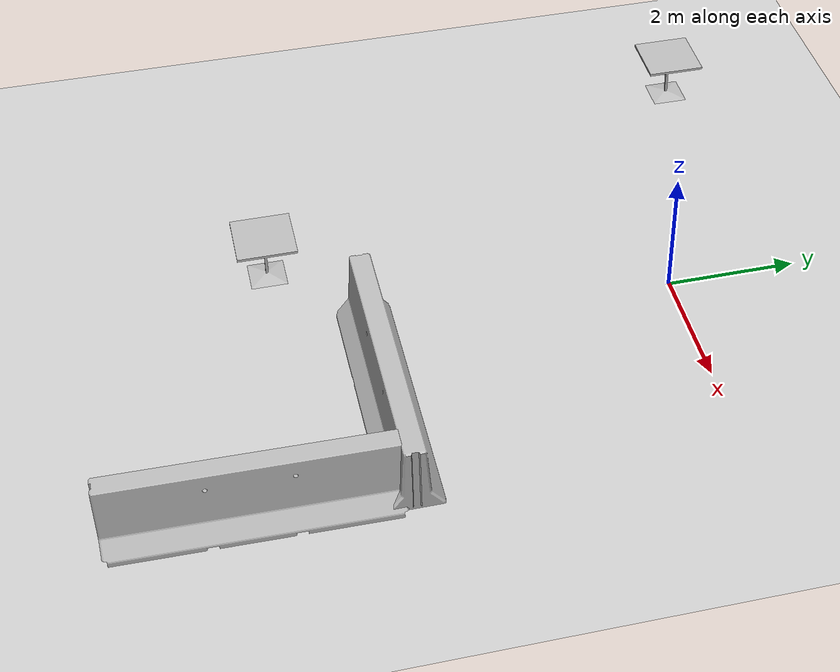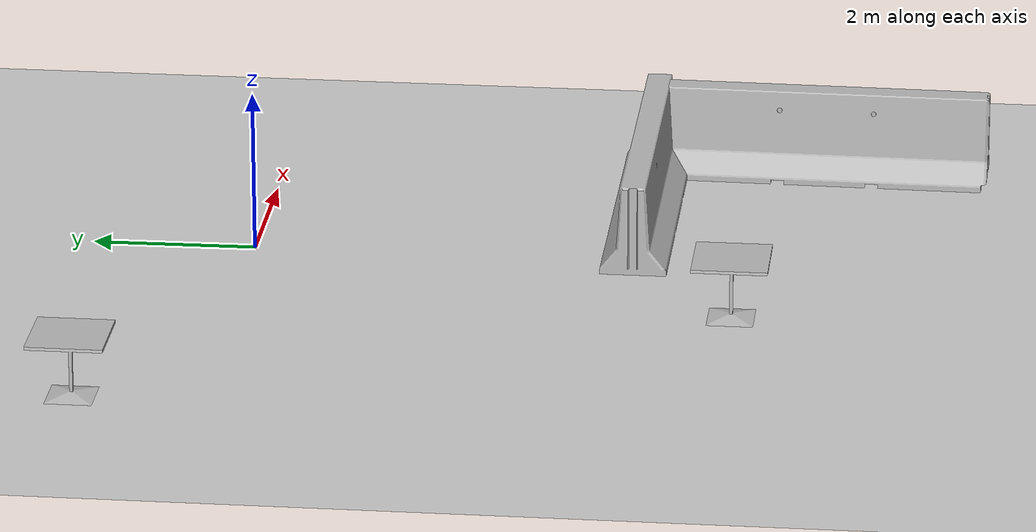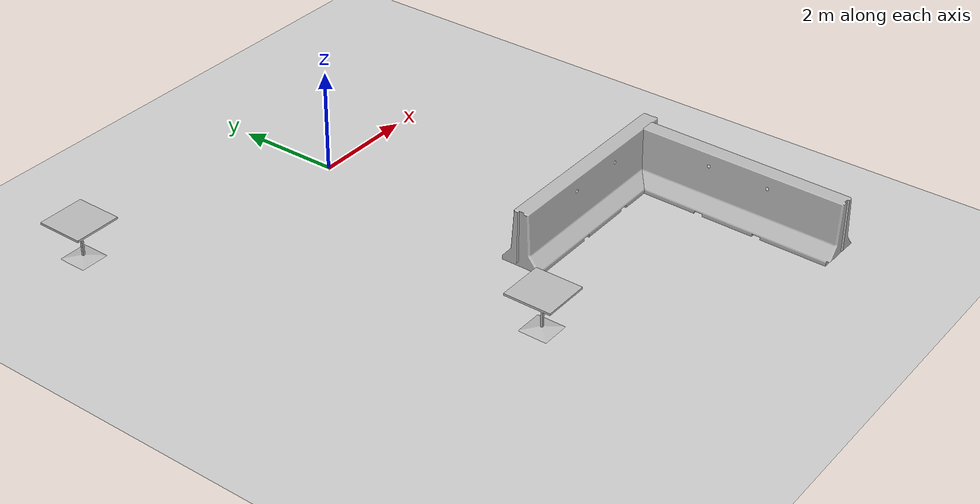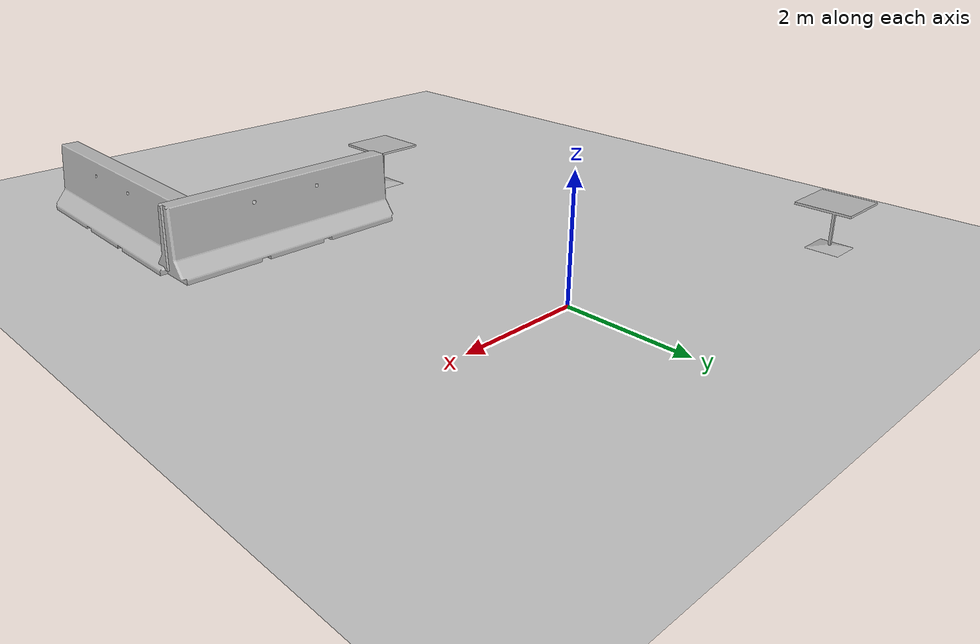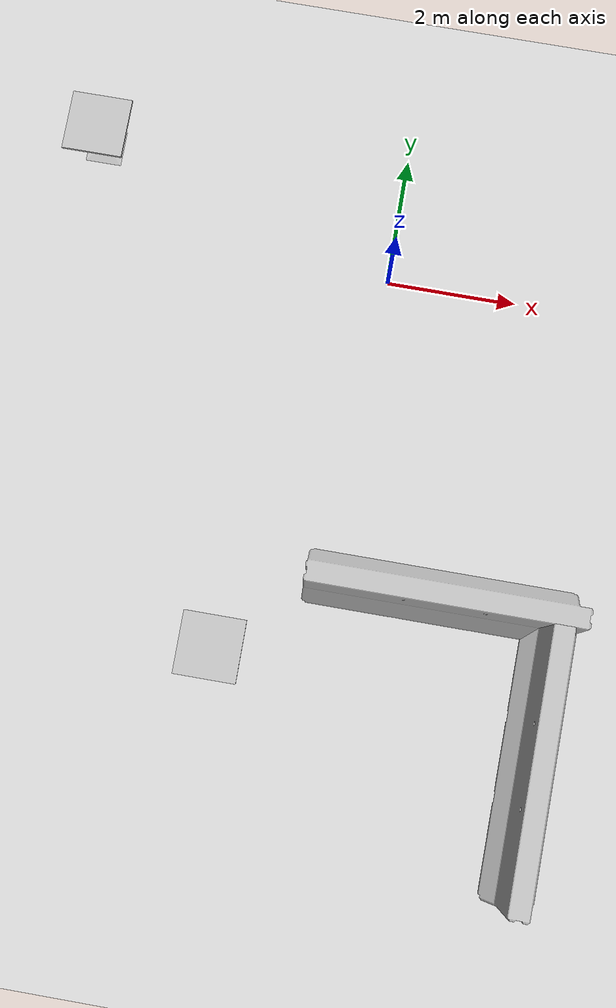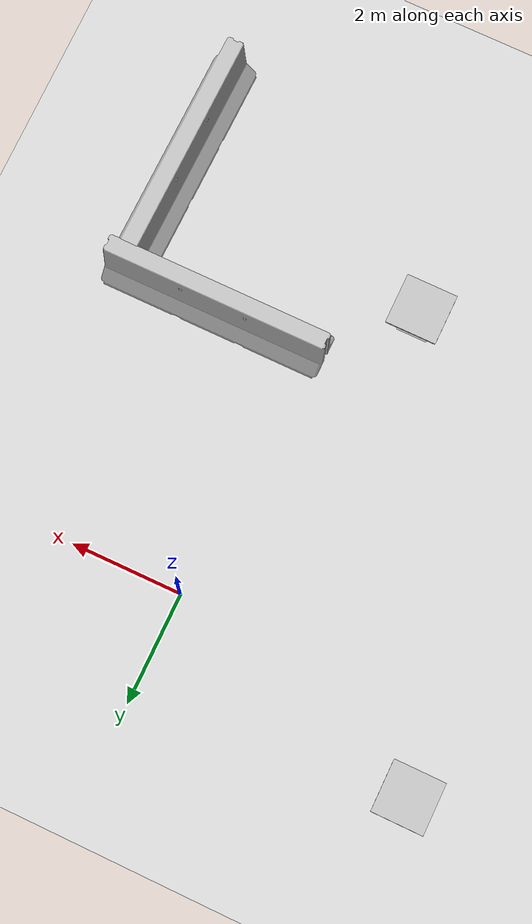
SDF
<sdf version="1.7">
 <world name="default">
  <light name="sun" type="directional">
   <pose>0 0 10 0 -0 0</pose>
   <diffuse>0.8 0.8 0.8 1</diffuse>
   <specular>0.2 0.2 0.2 1</specular>
   <attenuation>
    <range>1000</range>
    <constant>0.9</constant>
    <linear>0.01</linear>
    <quadratic>0.001</quadratic>
   </attenuation>
   <direction>-0.5 0.1 -0.9</direction>
   <spot><inner_angle>0</inner_angle><outer_angle>0</outer_angle><falloff>0</falloff></spot>
  </light>
  <model name="ground_plane">
   <static>1</static>
   <link name="link">
    <collision name="collision">
     <geometry><plane><normal>0 0 1</normal><size>100 100</size></plane></geometry>
     <surface>
      <contact><collide_bitmask>65535</collide_bitmask></contact>
      <friction><ode><mu>100</mu><mu2>50</mu2></ode></friction>
     </surface>
    </collision>
    <visual name="visual">
     <cast_shadows>0</cast_shadows>
     <geometry><plane><normal>0 0 1</normal><size>100 100</size></plane></geometry>
     <material>
      <script><uri>file://media/materials/scripts/gazebo.material</uri><name>Gazebo/Grey</name></script>
     </material>
    </visual>
   </link>
  </model>
  <gravity>0 0 -9.8</gravity>
  <magnetic_field>6e-06 2.3e-05 -4.2e-05</magnetic_field>
  <atmosphere type="adiabatic"/>
  <physics type="ode">
   <max_step_size>0.001</max_step_size>
   <real_time_factor>1</real_time_factor>
   <real_time_update_rate>1000</real_time_update_rate>
  </physics>
  <scene><ambient>0.4 0.4 0.4 1</ambient><background>0.7 0.7 0.7 1</background><shadows>1</shadows></scene>
  <audio><device>default</device></audio>
  <spherical_coordinates>
   <surface_model>EARTH_WGS84</surface_model>
   <latitude_deg>0</latitude_deg>
   <longitude_deg>0</longitude_deg>
   <elevation>0</elevation>
   <heading_deg>0</heading_deg>
  </spherical_coordinates>
  <model name="cafe_table">
   <static>1</static>
   <link name="link">
    <collision name="surface">
     <pose>0 0 0.755 0 -0 0</pose>
     <geometry><box><size>0.913 0.913 0.04</size></box></geometry>
    </collision>
    <collision name="column">
     <pose>0 0 0.37 0 -0 0</pose>
     <geometry><box><size>0.042 0.042 0.74</size></box></geometry>
    </collision>
    <collision name="base">
     <pose>0 0 0.02 0 -0 0</pose>
     <geometry><box><size>0.56 0.56 0.04</size></box></geometry>
    </collision>
    <visual name="visual">
     <geometry><mesh><uri>model://cafe_table/meshes/cafe_table.dae</uri></mesh></geometry>
    </visual>
   </link>
   <pose>-4.75242 1.46468 0 0 -0 0</pose>
  </model>
  <model name="cafe_table_0">
   <static>1</static>
   <link name="link">
    <collision name="surface">
     <pose>0 0 0.755 0 -0 0</pose>
     <geometry><box><size>0.913 0.913 0.04</size></box></geometry>
    </collision>
    <collision name="column">
     <pose>0 0 0.37 0 -0 0</pose>
     <geometry><box><size>0.042 0.042 0.74</size></box></geometry>
    </collision>
    <collision name="base">
     <pose>0 0 0.02 0 -0 0</pose>
     <geometry><box><size>0.56 0.56 0.04</size></box></geometry>
    </collision>
    <visual name="visual">
     <geometry><mesh><uri>model://cafe_table/meshes/cafe_table.dae</uri></mesh></geometry>
    </visual>
   </link>
   <pose>-1.63512 -5.96101 0 0 -0 0</pose>
  </model>
  <model name="jersey_barrier">
   <static>1</static>
   <link name="link">
    <visual name="visual">
     <geometry><mesh><uri>model://jersey_barrier/meshes/jersey_barrier.dae</uri></mesh></geometry>
    </visual>
    <collision name="upright">
     <pose>0 0 0.5715 0 -0 0</pose>
     <geometry><box><size>4.06542 0.3063 1.143</size></box></geometry>
    </collision>
    <collision name="base">
     <pose>0 0 0.032258 0 -0 0</pose>
     <geometry><box><size>4.06542 0.8107 0.064516</size></box></geometry>
    </collision>
    <collision name="base2">
     <pose>0 0 0.1 0 -0 0</pose>
     <geometry><box><size>4.06542 0.65 0.1</size></box></geometry>
    </collision>
    <collision name="base3">
     <pose>0 0 0.2 0 -0 0</pose>
     <geometry><box><size>4.06542 0.5 0.1</size></box></geometry>
    </collision>
    <collision name="left-angle">
     <pose>0 -0.224 0.2401 0.9 -0 0</pose>
     <geometry><box><size>4.06542 0.5 0.064516</size></box></geometry>
    </collision>
    <collision name="right-angle">
     <pose>0 0.224 0.2401 -0.9 0 0</pose>
     <geometry><box><size>4.06542 0.5 0.064516</size></box></geometry>
    </collision>
   </link>
   <pose>1.54805 -4.68079 0 0 -0 0</pose>
  </model>
  <model name="jersey_barrier_clone">
   <static>1</static>
   <link name="link">
    <visual name="visual">
     <geometry><mesh><uri>model://jersey_barrier/meshes/jersey_barrier.dae</uri></mesh></geometry>
    </visual>
    <collision name="upright">
     <pose>0 0 0.5715 0 -0 0</pose>
     <geometry><box><size>4.06542 0.3063 1.143</size></box></geometry>
    </collision>
    <collision name="base">
     <pose>0 0 0.032258 0 -0 0</pose>
     <geometry><box><size>4.06542 0.8107 0.064516</size></box></geometry>
    </collision>
    <collision name="base2">
     <pose>0 0 0.1 0 -0 0</pose>
     <geometry><box><size>4.06542 0.65 0.1</size></box></geometry>
    </collision>
    <collision name="base3">
     <pose>0 0 0.2 0 -0 0</pose>
     <geometry><box><size>4.06542 0.5 0.1</size></box></geometry>
    </collision>
    <collision name="left-angle">
     <pose>0 -0.224 0.2401 0.9 -0 0</pose>
     <geometry><box><size>4.06542 0.5 0.064516</size></box></geometry>
    </collision>
    <collision name="right-angle">
     <pose>0 0.224 0.2401 -0.9 0 0</pose>
     <geometry><box><size>4.06542 0.5 0.064516</size></box></geometry>
    </collision>
   </link>
   <pose>3.19378 -6.82535 0 0 0 -1.58824</pose>
  </model>
 </world>
</sdf>
